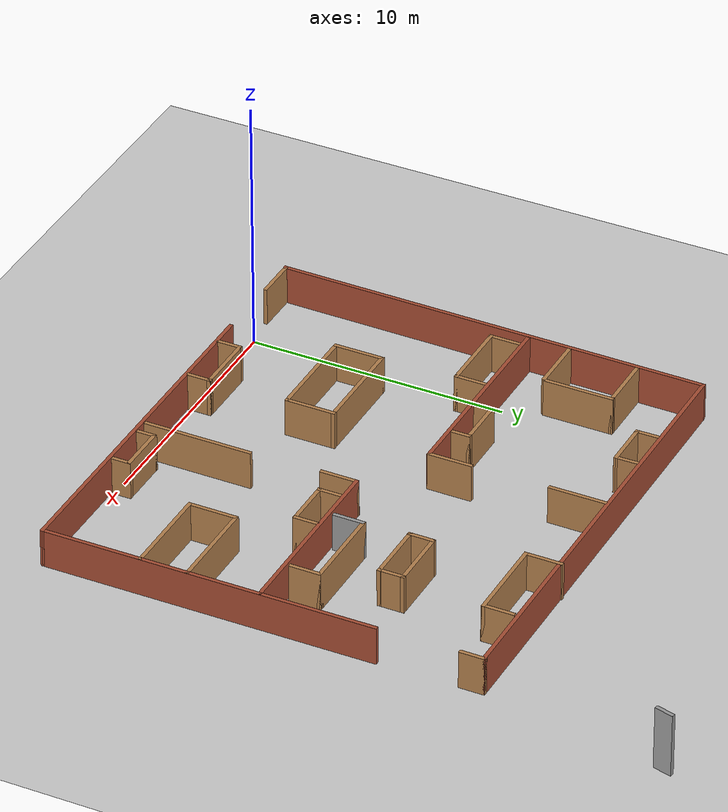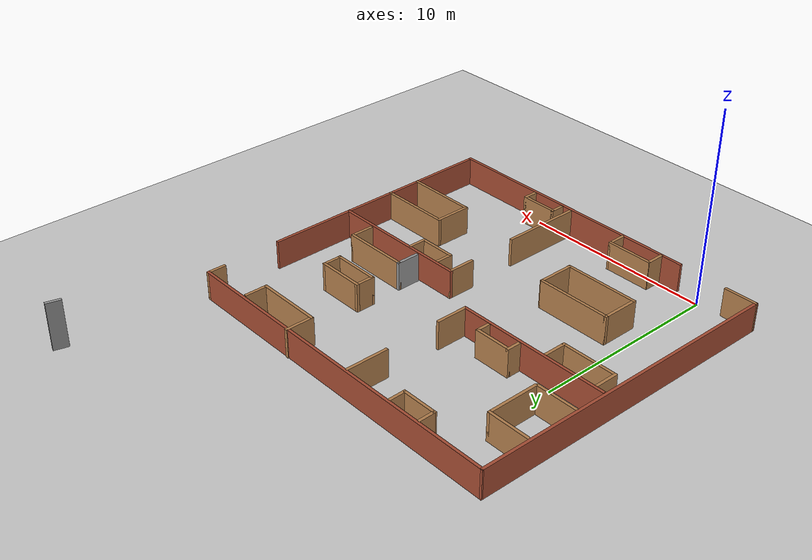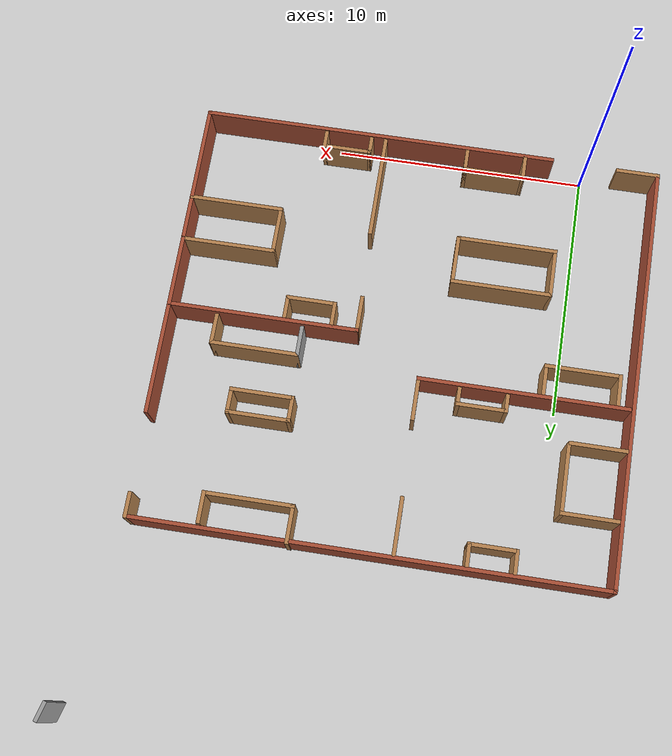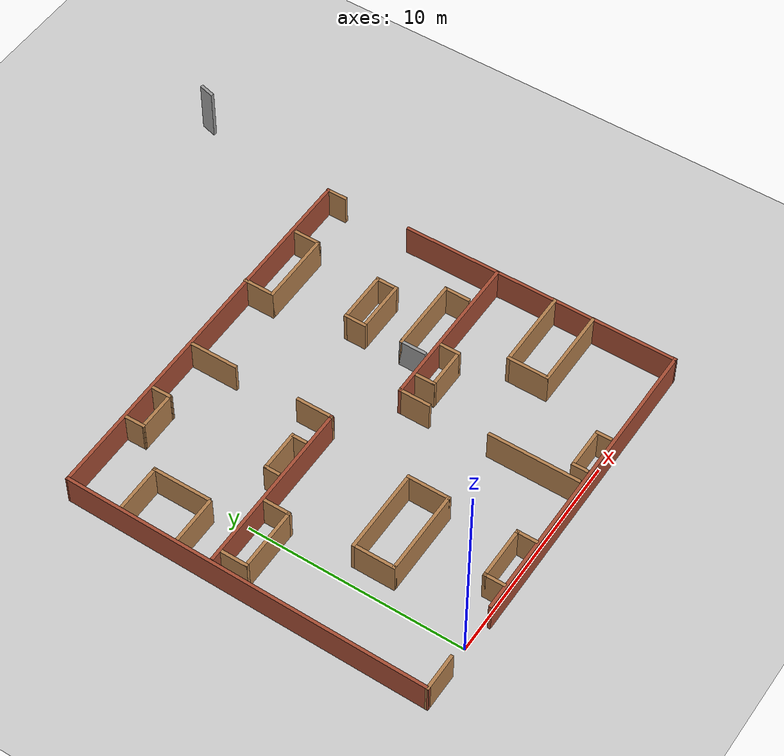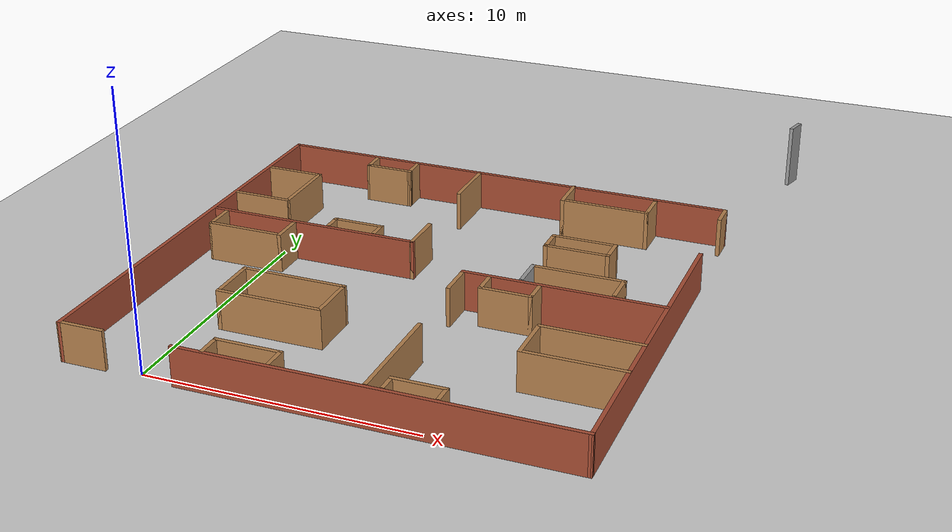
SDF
<sdf version="1.7">
 <world name="default">
  <light name="sun" type="directional">
   <pose>0 0 10 0 -0 0</pose>
   <diffuse>0.8 0.8 0.8 1</diffuse>
   <specular>0.2 0.2 0.2 1</specular>
   <attenuation>
    <range>1000</range>
    <constant>0.9</constant>
    <linear>0.01</linear>
    <quadratic>0.001</quadratic>
   </attenuation>
   <direction>-0.5 0.1 -0.9</direction>
   <spot><inner_angle>0</inner_angle><outer_angle>0</outer_angle><falloff>0</falloff></spot>
  </light>
  <model name="ground_plane">
   <static>1</static>
   <link name="link">
    <collision name="collision">
     <geometry><plane><normal>0 0 1</normal><size>100 100</size></plane></geometry>
     <surface>
      <contact><collide_bitmask>65535</collide_bitmask></contact>
      <friction><ode><mu>100</mu><mu2>50</mu2></ode></friction>
     </surface>
    </collision>
    <visual name="visual">
     <cast_shadows>0</cast_shadows>
     <geometry><plane><normal>0 0 1</normal><size>100 100</size></plane></geometry>
     <material>
      <script><uri>file://media/materials/scripts/gazebo.material</uri><name>Gazebo/Grey</name></script>
     </material>
    </visual>
   </link>
  </model>
  <gravity>0 0 -9.8</gravity>
  <magnetic_field>6e-06 2.3e-05 -4.2e-05</magnetic_field>
  <atmosphere type="adiabatic"/>
  <physics type="ode">
   <max_step_size>0.001</max_step_size>
   <real_time_factor>1</real_time_factor>
   <real_time_update_rate>1000</real_time_update_rate>
  </physics>
  <scene><ambient>0.4 0.4 0.4 1</ambient><background>0.7 0.7 0.7 1</background><shadows>1</shadows></scene>
  <spherical_coordinates>
   <surface_model>EARTH_WGS84</surface_model>
   <latitude_deg>0</latitude_deg>
   <longitude_deg>0</longitude_deg>
   <elevation>0</elevation>
   <heading_deg>0</heading_deg>
  </spherical_coordinates>
  <model name="Untitled">
   <pose>6.836 11.9489 0 0 -0 0</pose>
   <link name="Wall_100">
    <collision name="Wall_100_Collision">
     <geometry><box><size>3.5 0.15 1.5</size></box></geometry>
     <pose>0 0 0.75 0 -0 0</pose>
    </collision>
    <visual name="Wall_100_Visual">
     <pose>0 0 0.75 0 -0 0</pose>
     <geometry><box><size>3.5 0.15 1.5</size></box></geometry>
     <material>
      <script><uri>file://media/materials/scripts/gazebo.material</uri><name>Gazebo/Wood</name></script>
      <ambient>1 1 1 1</ambient>
     </material>
     <meta><layer>0</layer></meta>
    </visual>
    <pose>4.99402 -2.42898 0 0 -0 0</pose>
   </link>
   <link name="Wall_101">
    <collision name="Wall_101_Collision">
     <geometry><box><size>1.25 0.15 1.5</size></box></geometry>
     <pose>0 0 0.75 0 -0 0</pose>
    </collision>
    <visual name="Wall_101_Visual">
     <pose>0 0 0.75 0 -0 0</pose>
     <geometry><box><size>1.25 0.15 1.5</size></box></geometry>
     <material>
      <script><uri>file://media/materials/scripts/gazebo.material</uri><name>Gazebo/Wood</name></script>
      <ambient>1 1 1 1</ambient>
     </material>
     <meta><layer>0</layer></meta>
    </visual>
    <pose>6.66902 -2.97898 0 0 -0 -1.5708</pose>
   </link>
   <link name="Wall_103">
    <collision name="Wall_103_Collision">
     <geometry><box><size>1.0535 0.15 1.5</size></box></geometry>
     <pose>0 0 0.75 0 -0 0</pose>
    </collision>
    <visual name="Wall_103_Visual">
     <pose>0 0 0.75 0 -0 0</pose>
     <geometry><box><size>1.0535 0.15 1.5</size></box></geometry>
     <material>
      <script><uri>file://media/materials/scripts/gazebo.material</uri><name>Gazebo/Wood</name></script>
      <ambient>1 1 1 1</ambient>
     </material>
     <meta><layer>0</layer></meta>
    </visual>
    <pose>3.19102 -0.246478 0 0 -0 -1.5708</pose>
   </link>
   <link name="Wall_104">
    <collision name="Wall_104_Collision">
     <geometry><box><size>2.5 0.15 1.5</size></box></geometry>
     <pose>0 0 0.75 0 -0 0</pose>
    </collision>
    <visual name="Wall_104_Visual">
     <pose>0 0 0.75 0 -0 0</pose>
     <geometry><box><size>2.5 0.15 1.5</size></box></geometry>
     <material>
      <script><uri>file://media/materials/scripts/gazebo.material</uri><name>Gazebo/Wood</name></script>
      <ambient>1 1 1 1</ambient>
     </material>
     <meta><layer>0</layer></meta>
    </visual>
    <pose>4.36602 -0.697978 0 0 -0 0</pose>
   </link>
   <link name="Wall_105">
    <collision name="Wall_105_Collision">
     <geometry><box><size>1.0535 0.15 1.5</size></box></geometry>
     <pose>0 0 0.75 0 -0 0</pose>
    </collision>
    <visual name="Wall_105_Visual">
     <pose>0 0 0.75 0 -0 0</pose>
     <geometry><box><size>1.0535 0.15 1.5</size></box></geometry>
     <material>
      <script><uri>file://media/materials/scripts/gazebo.material</uri><name>Gazebo/Wood</name></script>
      <ambient>1 1 1 1</ambient>
     </material>
     <meta><layer>0</layer></meta>
    </visual>
    <pose>5.54102 -0.246478 0 0 -0 1.5708</pose>
   </link>
   <link name="Wall_106">
    <collision name="Wall_106_Collision">
     <geometry><box><size>2.5 0.15 1.5</size></box></geometry>
     <pose>0 0 0.75 0 -0 0</pose>
    </collision>
    <visual name="Wall_106_Visual">
     <pose>0 0 0.75 0 -0 0</pose>
     <geometry><box><size>2.5 0.15 1.5</size></box></geometry>
     <material>
      <script><uri>file://media/materials/scripts/gazebo.material</uri><name>Gazebo/Wood</name></script>
      <ambient>1 1 1 1</ambient>
     </material>
     <meta><layer>0</layer></meta>
    </visual>
    <pose>4.36602 0.205022 0 0 -0 3.14159</pose>
   </link>
   <link name="Wall_110">
    <collision name="Wall_110_Collision">
     <geometry><box><size>0.75 0.15 2.5</size></box></geometry>
     <pose>0 0 1.25 0 -0 0</pose>
    </collision>
    <visual name="Wall_110_Visual">
     <pose>0 0 1.25 0 -0 0</pose>
     <geometry><box><size>0.75 0.15 2.5</size></box></geometry>
     <material>
      <script><uri>file://media/materials/scripts/gazebo.material</uri><name>Gazebo/Grey</name></script>
      <ambient>1 1 1 1</ambient>
     </material>
     <meta><layer>0</layer></meta>
    </visual>
    <pose>9.65715 11.8769 0 0 -0 1.309</pose>
   </link>
   <link name="Wall_13">
    <collision name="Wall_13_Collision">
     <geometry><box><size>16.9704 0.15 1.5</size></box></geometry>
     <pose>0 0 0.75 0 -0 0</pose>
    </collision>
    <visual name="Wall_13_Visual">
     <pose>0 0 0.75 0 -0 0</pose>
     <geometry><box><size>16.9704 0.15 1.5</size></box></geometry>
     <material>
      <script><uri>file://media/materials/scripts/gazebo.material</uri><name>Gazebo/Bricks</name></script>
      <ambient>1 1 1 1</ambient>
     </material>
     <meta><layer>0</layer></meta>
    </visual>
    <pose>-9.67498 -3.71348 0 0 -0 -1.57983</pose>
   </link>
   <link name="Wall_14">
    <collision name="Wall_14_Collision">
     <geometry><box><size>1.75 0.15 1.5</size></box></geometry>
     <pose>0 0 0.75 0 -0 0</pose>
    </collision>
    <visual name="Wall_14_Visual">
     <pose>0 0 0.75 0 -0 0</pose>
     <geometry><box><size>1.75 0.15 1.5</size></box></geometry>
     <material>
      <script><uri>file://media/materials/scripts/gazebo.material</uri><name>Gazebo/Wood</name></script>
      <ambient>1 1 1 1</ambient>
     </material>
     <meta><layer>0</layer></meta>
    </visual>
    <pose>-8.95098 -12.123 0 0 -0 0</pose>
   </link>
   <link name="Wall_19">
    <collision name="Wall_19_Collision">
     <geometry><box><size>14.25 0.15 1.5</size></box></geometry>
     <pose>0 0 0.75 0 -0 0</pose>
    </collision>
    <visual name="Wall_19_Visual">
     <pose>0 0 0.75 0 -0 0</pose>
     <geometry><box><size>14.25 0.15 1.5</size></box></geometry>
     <material>
      <script><uri>file://media/materials/scripts/gazebo.material</uri><name>Gazebo/Bricks</name></script>
      <ambient>1 1 1 1</ambient>
     </material>
     <meta><layer>0</layer></meta>
    </visual>
    <pose>1.59402 -12.183 0 0 -0 0</pose>
   </link>
   <link name="Wall_20">
    <collision name="Wall_20_Collision">
     <geometry><box><size>12.9764 0.15 1.5</size></box></geometry>
     <pose>0 0 0.75 0 -0 0</pose>
    </collision>
    <visual name="Wall_20_Visual">
     <pose>0 0 0.75 0 -0 0</pose>
     <geometry><box><size>12.9764 0.15 1.5</size></box></geometry>
     <material>
      <script><uri>file://media/materials/scripts/gazebo.material</uri><name>Gazebo/Bricks</name></script>
      <ambient>1 1 1 1</ambient>
     </material>
     <meta><layer>0</layer></meta>
    </visual>
    <pose>8.61002 -5.76998 0 0 -0 1.5761</pose>
   </link>
   <link name="Wall_24">
    <collision name="Wall_24_Collision">
     <geometry><box><size>18.25 0.15 1.5</size></box></geometry>
     <pose>0 0 0.75 0 -0 0</pose>
    </collision>
    <visual name="Wall_24_Visual">
     <pose>0 0 0.75 0 -0 0</pose>
     <geometry><box><size>18.25 0.15 1.5</size></box></geometry>
     <material>
      <script><uri>file://media/materials/scripts/gazebo.material</uri><name>Gazebo/Bricks</name></script>
      <ambient>1 1 1 1</ambient>
     </material>
     <meta><layer>0</layer></meta>
    </visual>
    <pose>-0.548978 4.69602 0 0 -0 0</pose>
   </link>
   <link name="Wall_26">
    <collision name="Wall_26_Collision">
     <geometry><box><size>8.21227 0.15 1.5</size></box></geometry>
     <pose>0 0 0.75 0 -0 0</pose>
    </collision>
    <visual name="Wall_26_Visual">
     <pose>0 0 0.75 0 -0 0</pose>
     <geometry><box><size>8.21227 0.15 1.5</size></box></geometry>
     <material>
      <script><uri>file://media/materials/scripts/gazebo.material</uri><name>Gazebo/Bricks</name></script>
      <ambient>1 1 1 1</ambient>
     </material>
     <meta><layer>0</layer></meta>
    </visual>
    <pose>-5.46284 -2.20098 0 0 -0 0</pose>
   </link>
   <link name="Wall_30">
    <collision name="Wall_30_Collision">
     <geometry><box><size>1.75 0.15 1.5</size></box></geometry>
     <pose>0 0 0.75 0 -0 0</pose>
    </collision>
    <visual name="Wall_30_Visual">
     <pose>0 0 0.75 0 -0 0</pose>
     <geometry><box><size>1.75 0.15 1.5</size></box></geometry>
     <material>
      <script><uri>file://media/materials/scripts/gazebo.material</uri><name>Gazebo/Wood</name></script>
      <ambient>1 1 1 1</ambient>
     </material>
     <meta><layer>0</layer></meta>
    </visual>
    <pose>-1.43171 -1.40098 0 0 -0 1.5708</pose>
   </link>
   <link name="Wall_32">
    <collision name="Wall_32_Collision">
     <geometry><box><size>2.25 0.15 1.5</size></box></geometry>
     <pose>0 0 0.75 0 -0 0</pose>
    </collision>
    <visual name="Wall_32_Visual">
     <pose>0 0 0.75 0 -0 0</pose>
     <geometry><box><size>2.25 0.15 1.5</size></box></geometry>
     <material>
      <script><uri>file://media/materials/scripts/gazebo.material</uri><name>Gazebo/Wood</name></script>
      <ambient>1 1 1 1</ambient>
     </material>
     <meta><layer>0</layer></meta>
    </visual>
    <pose>-1.48798 3.53002 0 0 -0 -1.5708</pose>
   </link>
   <link name="Wall_34">
    <collision name="Wall_34_Collision">
     <geometry><box><size>7.5 0.15 1.5</size></box></geometry>
     <pose>0 0 0.75 0 -0 0</pose>
    </collision>
    <visual name="Wall_34_Visual">
     <pose>0 0 0.75 0 -0 0</pose>
     <geometry><box><size>7.5 0.15 1.5</size></box></geometry>
     <material>
      <script><uri>file://media/materials/scripts/gazebo.material</uri><name>Gazebo/Bricks</name></script>
      <ambient>1 1 1 1</ambient>
     </material>
     <meta><layer>0</layer></meta>
    </visual>
    <pose>4.88102 -3.75398 0 0 -0 0</pose>
   </link>
   <link name="Wall_37">
    <collision name="Wall_37_Collision">
     <geometry><box><size>1.5 0.15 1.5</size></box></geometry>
     <pose>0 0 0.75 0 -0 0</pose>
    </collision>
    <visual name="Wall_37_Visual">
     <pose>0 0 0.75 0 -0 0</pose>
     <geometry><box><size>1.5 0.15 1.5</size></box></geometry>
     <material>
      <script><uri>file://media/materials/scripts/gazebo.material</uri><name>Gazebo/Wood</name></script>
      <ambient>1 1 1 1</ambient>
     </material>
     <meta><layer>0</layer></meta>
    </visual>
    <pose>1.20602 -4.42898 0 0 -0 -1.5708</pose>
   </link>
   <link name="Wall_39">
    <collision name="Wall_39_Collision">
     <geometry><box><size>4.25 0.15 1.5</size></box></geometry>
     <pose>0 0 0.75 0 -0 0</pose>
    </collision>
    <visual name="Wall_39_Visual">
     <pose>0 0 0.75 0 -0 0</pose>
     <geometry><box><size>4.25 0.15 1.5</size></box></geometry>
     <material>
      <script><uri>file://media/materials/scripts/gazebo.material</uri><name>Gazebo/Wood</name></script>
      <ambient>1 1 1 1</ambient>
     </material>
     <meta><layer>0</layer></meta>
    </visual>
    <pose>1.32502 -9.95898 0 0 -0 -1.5708</pose>
   </link>
   <link name="Wall_43">
    <collision name="Wall_43_Collision">
     <geometry><box><size>1 0.15 1.5</size></box></geometry>
     <pose>0 0 0.75 0 -0 0</pose>
    </collision>
    <visual name="Wall_43_Visual">
     <pose>0 0 0.75 0 -0 0</pose>
     <geometry><box><size>1 0.15 1.5</size></box></geometry>
     <material>
      <script><uri>file://media/materials/scripts/gazebo.material</uri><name>Gazebo/Wood</name></script>
      <ambient>1 1 1 1</ambient>
     </material>
     <meta><layer>0</layer></meta>
    </visual>
    <pose>8.50102 4.27102 0 0 -0 -1.5708</pose>
   </link>
   <link name="Wall_45">
    <collision name="Wall_45_Collision">
     <geometry><box><size>1 0.15 1.5</size></box></geometry>
     <pose>0 0 0.75 0 -0 0</pose>
    </collision>
    <visual name="Wall_45_Visual">
     <pose>0 0 0.75 0 -0 0</pose>
     <geometry><box><size>1 0.15 1.5</size></box></geometry>
     <material>
      <script><uri>file://media/materials/scripts/gazebo.material</uri><name>Gazebo/Wood</name></script>
      <ambient>1 1 1 1</ambient>
     </material>
     <meta><layer>0</layer></meta>
    </visual>
    <pose>2.21902 -4.27298 0 0 -0 -1.5708</pose>
   </link>
   <link name="Wall_46">
    <collision name="Wall_46_Collision">
     <geometry><box><size>2 0.15 1.5</size></box></geometry>
     <pose>0 0 0.75 0 -0 0</pose>
    </collision>
    <visual name="Wall_46_Visual">
     <pose>0 0 0.75 0 -0 0</pose>
     <geometry><box><size>2 0.15 1.5</size></box></geometry>
     <material>
      <script><uri>file://media/materials/scripts/gazebo.material</uri><name>Gazebo/Wood</name></script>
      <ambient>1 1 1 1</ambient>
     </material>
     <meta><layer>0</layer></meta>
    </visual>
    <pose>3.14402 -4.69798 0 0 -0 0</pose>
   </link>
   <link name="Wall_47">
    <collision name="Wall_47_Collision">
     <geometry><box><size>1 0.15 1.5</size></box></geometry>
     <pose>0 0 0.75 0 -0 0</pose>
    </collision>
    <visual name="Wall_47_Visual">
     <pose>0 0 0.75 0 -0 0</pose>
     <geometry><box><size>1 0.15 1.5</size></box></geometry>
     <material>
      <script><uri>file://media/materials/scripts/gazebo.material</uri><name>Gazebo/Wood</name></script>
      <ambient>1 1 1 1</ambient>
     </material>
     <meta><layer>0</layer></meta>
    </visual>
    <pose>4.06902 -4.27298 0 0 -0 1.5708</pose>
   </link>
   <link name="Wall_51">
    <collision name="Wall_51_Collision">
     <geometry><box><size>3.75 0.15 1.5</size></box></geometry>
     <pose>0 0 0.75 0 -0 0</pose>
    </collision>
    <visual name="Wall_51_Visual">
     <pose>0 0 0.75 0 -0 0</pose>
     <geometry><box><size>3.75 0.15 1.5</size></box></geometry>
     <material>
      <script><uri>file://media/materials/scripts/gazebo.material</uri><name>Gazebo/Wood</name></script>
      <ambient>1 1 1 1</ambient>
     </material>
     <meta><layer>0</layer></meta>
    </visual>
    <pose>6.80302 -6.53198 0 0 -0 0</pose>
   </link>
   <link name="Wall_53">
    <collision name="Wall_53_Collision">
     <geometry><box><size>1.96941 0.15 1.5</size></box></geometry>
     <pose>0 0 0.75 0 -0 0</pose>
    </collision>
    <visual name="Wall_53_Visual">
     <pose>0 0 0.75 0 -0 0</pose>
     <geometry><box><size>1.96941 0.15 1.5</size></box></geometry>
     <material>
      <script><uri>file://media/materials/scripts/gazebo.material</uri><name>Gazebo/Wood</name></script>
      <ambient>1 1 1 1</ambient>
     </material>
     <meta><layer>0</layer></meta>
    </visual>
    <pose>5.00302 -7.44198 0 0 -0 -1.5708</pose>
   </link>
   <link name="Wall_54">
    <collision name="Wall_54_Collision">
     <geometry><box><size>3.75 0.15 1.5</size></box></geometry>
     <pose>0 0 0.75 0 -0 0</pose>
    </collision>
    <visual name="Wall_54_Visual">
     <pose>0 0 0.75 0 -0 0</pose>
     <geometry><box><size>3.75 0.15 1.5</size></box></geometry>
     <material>
      <script><uri>file://media/materials/scripts/gazebo.material</uri><name>Gazebo/Wood</name></script>
      <ambient>1 1 1 1</ambient>
     </material>
     <meta><layer>0</layer></meta>
    </visual>
    <pose>6.80302 -8.35198 0 0 -0 0</pose>
   </link>
   <link name="Wall_56">
    <collision name="Wall_56_Collision">
     <geometry><box><size>0.75 0.15 1.5</size></box></geometry>
     <pose>0 0 0.75 0 -0 0</pose>
    </collision>
    <visual name="Wall_56_Visual">
     <pose>0 0 0.75 0 -0 0</pose>
     <geometry><box><size>0.75 0.15 1.5</size></box></geometry>
     <material>
      <script><uri>file://media/materials/scripts/gazebo.material</uri><name>Gazebo/Wood</name></script>
      <ambient>1 1 1 1</ambient>
     </material>
     <meta><layer>0</layer></meta>
    </visual>
    <pose>1.90202 -11.707 0 0 -0 1.5708</pose>
   </link>
   <link name="Wall_57">
    <collision name="Wall_57_Collision">
     <geometry><box><size>2 0.15 1.5</size></box></geometry>
     <pose>0 0 0.75 0 -0 0</pose>
    </collision>
    <visual name="Wall_57_Visual">
     <pose>0 0 0.75 0 -0 0</pose>
     <geometry><box><size>2 0.15 1.5</size></box></geometry>
     <material>
      <script><uri>file://media/materials/scripts/gazebo.material</uri><name>Gazebo/Wood</name></script>
      <ambient>1 1 1 1</ambient>
     </material>
     <meta><layer>0</layer></meta>
    </visual>
    <pose>2.82702 -11.407 0 0 -0 0</pose>
   </link>
   <link name="Wall_58">
    <collision name="Wall_58_Collision">
     <geometry><box><size>0.75 0.15 1.5</size></box></geometry>
     <pose>0 0 0.75 0 -0 0</pose>
    </collision>
    <visual name="Wall_58_Visual">
     <pose>0 0 0.75 0 -0 0</pose>
     <geometry><box><size>0.75 0.15 1.5</size></box></geometry>
     <material>
      <script><uri>file://media/materials/scripts/gazebo.material</uri><name>Gazebo/Wood</name></script>
      <ambient>1 1 1 1</ambient>
     </material>
     <meta><layer>0</layer></meta>
    </visual>
    <pose>3.75202 -11.707 0 0 -0 -1.5708</pose>
   </link>
   <link name="Wall_64">
    <collision name="Wall_64_Collision">
     <geometry><box><size>1.25 0.15 1.5</size></box></geometry>
     <pose>0 0 0.75 0 -0 0</pose>
    </collision>
    <visual name="Wall_64_Visual">
     <pose>0 0 0.75 0 -0 0</pose>
     <geometry><box><size>1.25 0.15 1.5</size></box></geometry>
     <material>
      <script><uri>file://media/materials/scripts/gazebo.material</uri><name>Gazebo/Wood</name></script>
      <ambient>1 1 1 1</ambient>
     </material>
     <meta><layer>0</layer></meta>
    </visual>
    <pose>-9.04798 -2.89898 0 0 -0 -1.5708</pose>
   </link>
   <link name="Wall_65">
    <collision name="Wall_65_Collision">
     <geometry><box><size>3 0.15 1.5</size></box></geometry>
     <pose>0 0 0.75 0 -0 0</pose>
    </collision>
    <visual name="Wall_65_Visual">
     <pose>0 0 0.75 0 -0 0</pose>
     <geometry><box><size>3 0.15 1.5</size></box></geometry>
     <material>
      <script><uri>file://media/materials/scripts/gazebo.material</uri><name>Gazebo/Wood</name></script>
      <ambient>1 1 1 1</ambient>
     </material>
     <meta><layer>0</layer></meta>
    </visual>
    <pose>-7.62298 -3.44898 0 0 -0 0</pose>
   </link>
   <link name="Wall_66">
    <collision name="Wall_66_Collision">
     <geometry><box><size>1.25 0.15 1.5</size></box></geometry>
     <pose>0 0 0.75 0 -0 0</pose>
    </collision>
    <visual name="Wall_66_Visual">
     <pose>0 0 0.75 0 -0 0</pose>
     <geometry><box><size>1.25 0.15 1.5</size></box></geometry>
     <material>
      <script><uri>file://media/materials/scripts/gazebo.material</uri><name>Gazebo/Wood</name></script>
      <ambient>1 1 1 1</ambient>
     </material>
     <meta><layer>0</layer></meta>
    </visual>
    <pose>-6.19798 -2.89898 0 0 -0 1.5708</pose>
   </link>
   <link name="Wall_68">
    <collision name="Wall_68_Collision">
     <geometry><box><size>2 0.15 1.5</size></box></geometry>
     <pose>0 0 0.75 0 -0 0</pose>
    </collision>
    <visual name="Wall_68_Visual">
     <pose>0 0 0.75 0 -0 0</pose>
     <geometry><box><size>2 0.15 1.5</size></box></geometry>
     <material>
      <script><uri>file://media/materials/scripts/gazebo.material</uri><name>Gazebo/Wood</name></script>
      <ambient>1 1 1 1</ambient>
     </material>
     <meta><layer>0</layer></meta>
    </visual>
    <pose>-6.02398 -7.27498 0 0 -0 -1.5708</pose>
   </link>
   <link name="Wall_69">
    <collision name="Wall_69_Collision">
     <geometry><box><size>4 0.15 1.5</size></box></geometry>
     <pose>0 0 0.75 0 -0 0</pose>
    </collision>
    <visual name="Wall_69_Visual">
     <pose>0 0 0.75 0 -0 0</pose>
     <geometry><box><size>4 0.15 1.5</size></box></geometry>
     <material>
      <script><uri>file://media/materials/scripts/gazebo.material</uri><name>Gazebo/Wood</name></script>
      <ambient>1 1 1 1</ambient>
     </material>
     <meta><layer>0</layer></meta>
    </visual>
    <pose>-4.09898 -8.19998 0 0 -0 0</pose>
   </link>
   <link name="Wall_70">
    <collision name="Wall_70_Collision">
     <geometry><box><size>2 0.15 1.5</size></box></geometry>
     <pose>0 0 0.75 0 -0 0</pose>
    </collision>
    <visual name="Wall_70_Visual">
     <pose>0 0 0.75 0 -0 0</pose>
     <geometry><box><size>2 0.15 1.5</size></box></geometry>
     <material>
      <script><uri>file://media/materials/scripts/gazebo.material</uri><name>Gazebo/Wood</name></script>
      <ambient>1 1 1 1</ambient>
     </material>
     <meta><layer>0</layer></meta>
    </visual>
    <pose>-2.17398 -7.27498 0 0 -0 1.5708</pose>
   </link>
   <link name="Wall_72">
    <collision name="Wall_72_Collision">
     <geometry><box><size>4 0.15 1.5</size></box></geometry>
     <pose>0 0 0.75 0 -0 0</pose>
    </collision>
    <visual name="Wall_72_Visual">
     <pose>0 0 0.75 0 -0 0</pose>
     <geometry><box><size>4 0.15 1.5</size></box></geometry>
     <material>
      <script><uri>file://media/materials/scripts/gazebo.material</uri><name>Gazebo/Wood</name></script>
      <ambient>1 1 1 1</ambient>
     </material>
     <meta><layer>0</layer></meta>
    </visual>
    <pose>-4.09898 -6.34998 0 0 -0 0</pose>
   </link>
   <link name="Wall_74">
    <collision name="Wall_74_Collision">
     <geometry><box><size>1 0.15 1.5</size></box></geometry>
     <pose>0 0 0.75 0 -0 0</pose>
    </collision>
    <visual name="Wall_74_Visual">
     <pose>0 0 0.75 0 -0 0</pose>
     <geometry><box><size>1 0.15 1.5</size></box></geometry>
     <material>
      <script><uri>file://media/materials/scripts/gazebo.material</uri><name>Gazebo/Wood</name></script>
      <ambient>1 1 1 1</ambient>
     </material>
     <meta><layer>0</layer></meta>
    </visual>
    <pose>-4.38198 -11.673 0 0 -0 1.5708</pose>
   </link>
   <link name="Wall_75">
    <collision name="Wall_75_Collision">
     <geometry><box><size>2.5 0.15 1.5</size></box></geometry>
     <pose>0 0 0.75 0 -0 0</pose>
    </collision>
    <visual name="Wall_75_Visual">
     <pose>0 0 0.75 0 -0 0</pose>
     <geometry><box><size>2.5 0.15 1.5</size></box></geometry>
     <material>
      <script><uri>file://media/materials/scripts/gazebo.material</uri><name>Gazebo/Wood</name></script>
      <ambient>1 1 1 1</ambient>
     </material>
     <meta><layer>0</layer></meta>
    </visual>
    <pose>-3.20698 -11.248 0 0 -0 0</pose>
   </link>
   <link name="Wall_76">
    <collision name="Wall_76_Collision">
     <geometry><box><size>1 0.15 1.5</size></box></geometry>
     <pose>0 0 0.75 0 -0 0</pose>
    </collision>
    <visual name="Wall_76_Visual">
     <pose>0 0 0.75 0 -0 0</pose>
     <geometry><box><size>1 0.15 1.5</size></box></geometry>
     <material>
      <script><uri>file://media/materials/scripts/gazebo.material</uri><name>Gazebo/Wood</name></script>
      <ambient>1 1 1 1</ambient>
     </material>
     <meta><layer>0</layer></meta>
    </visual>
    <pose>-2.03198 -11.673 0 0 -0 -1.5708</pose>
   </link>
   <link name="Wall_78">
    <collision name="Wall_78_Collision">
     <geometry><box><size>2.25 0.15 1.5</size></box></geometry>
     <pose>0 0 0.75 0 -0 0</pose>
    </collision>
    <visual name="Wall_78_Visual">
     <pose>0 0 0.75 0 -0 0</pose>
     <geometry><box><size>2.25 0.15 1.5</size></box></geometry>
     <material>
      <script><uri>file://media/materials/scripts/gazebo.material</uri><name>Gazebo/Wood</name></script>
      <ambient>1 1 1 1</ambient>
     </material>
     <meta><layer>0</layer></meta>
    </visual>
    <pose>-8.42098 2.13302 0 0 -0 0</pose>
   </link>
   <link name="Wall_79">
    <collision name="Wall_79_Collision">
     <geometry><box><size>2.75 0.15 1.5</size></box></geometry>
     <pose>0 0 0.75 0 -0 0</pose>
    </collision>
    <visual name="Wall_79_Visual">
     <pose>0 0 0.75 0 -0 0</pose>
     <geometry><box><size>2.75 0.15 1.5</size></box></geometry>
     <material>
      <script><uri>file://media/materials/scripts/gazebo.material</uri><name>Gazebo/Wood</name></script>
      <ambient>1 1 1 1</ambient>
     </material>
     <meta><layer>0</layer></meta>
    </visual>
    <pose>-7.37098 0.833022 0 0 -0 -1.5708</pose>
   </link>
   <link name="Wall_83">
    <collision name="Wall_83_Collision">
     <geometry><box><size>2.25 0.15 1.5</size></box></geometry>
     <pose>0 0 0.75 0 -0 0</pose>
    </collision>
    <visual name="Wall_83_Visual">
     <pose>0 0 0.75 0 -0 0</pose>
     <geometry><box><size>2.25 0.15 1.5</size></box></geometry>
     <material>
      <script><uri>file://media/materials/scripts/gazebo.material</uri><name>Gazebo/Wood</name></script>
      <ambient>1 1 1 1</ambient>
     </material>
     <meta><layer>0</layer></meta>
    </visual>
    <pose>-8.48298 -0.557978 0 0 -0 0</pose>
   </link>
   <link name="Wall_85">
    <collision name="Wall_85_Collision">
     <geometry><box><size>0.937838 0.15 1.5</size></box></geometry>
     <pose>0 0 0.75 0 -0 0</pose>
    </collision>
    <visual name="Wall_85_Visual">
     <pose>0 0 0.75 0 -0 0</pose>
     <geometry><box><size>0.937838 0.15 1.5</size></box></geometry>
     <material>
      <script><uri>file://media/materials/scripts/gazebo.material</uri><name>Gazebo/Wood</name></script>
      <ambient>1 1 1 1</ambient>
     </material>
     <meta><layer>0</layer></meta>
    </visual>
    <pose>-5.93279 4.17015 0 0 -0 -1.55509</pose>
   </link>
   <link name="Wall_86">
    <collision name="Wall_86_Collision">
     <geometry><box><size>1.918 0.15 1.5</size></box></geometry>
     <pose>0 0 0.75 0 -0 0</pose>
    </collision>
    <visual name="Wall_86_Visual">
     <pose>0 0 0.75 0 -0 0</pose>
     <geometry><box><size>1.918 0.15 1.5</size></box></geometry>
     <material>
      <script><uri>file://media/materials/scripts/gazebo.material</uri><name>Gazebo/Wood</name></script>
      <ambient>1 1 1 1</ambient>
     </material>
     <meta><layer>0</layer></meta>
    </visual>
    <pose>-5.04261 3.77678 0 0 -0 0.000566</pose>
   </link>
   <link name="Wall_87">
    <collision name="Wall_87_Collision">
     <geometry><box><size>0.936838 0.15 1.5</size></box></geometry>
     <pose>0 0 0.75 0 -0 0</pose>
    </collision>
    <visual name="Wall_87_Visual">
     <pose>0 0 0.75 0 -0 0</pose>
     <geometry><box><size>0.936838 0.15 1.5</size></box></geometry>
     <material>
      <script><uri>file://media/materials/scripts/gazebo.material</uri><name>Gazebo/Wood</name></script>
      <ambient>1 1 1 1</ambient>
     </material>
     <meta><layer>0</layer></meta>
    </visual>
    <pose>-4.16479 4.17065 0 0 -0 1.58652</pose>
   </link>
   <link name="Wall_89">
    <collision name="Wall_89_Collision">
     <geometry><box><size>0.75 0.15 1.5</size></box></geometry>
     <pose>0 0 0.75 0 -0 0</pose>
    </collision>
    <visual name="Wall_89_Visual">
     <pose>0 0 0.75 0 -0 0</pose>
     <geometry><box><size>0.75 0.15 1.5</size></box></geometry>
     <material>
      <script><uri>file://media/materials/scripts/gazebo.material</uri><name>Gazebo/Wood</name></script>
      <ambient>1 1 1 1</ambient>
     </material>
     <meta><layer>0</layer></meta>
    </visual>
    <pose>-4.88098 -1.72698 0 0 -0 1.5708</pose>
   </link>
   <link name="Wall_90">
    <collision name="Wall_90_Collision">
     <geometry><box><size>2 0.15 1.5</size></box></geometry>
     <pose>0 0 0.75 0 -0 0</pose>
    </collision>
    <visual name="Wall_90_Visual">
     <pose>0 0 0.75 0 -0 0</pose>
     <geometry><box><size>2 0.15 1.5</size></box></geometry>
     <material>
      <script><uri>file://media/materials/scripts/gazebo.material</uri><name>Gazebo/Wood</name></script>
      <ambient>1 1 1 1</ambient>
     </material>
     <meta><layer>0</layer></meta>
    </visual>
    <pose>-3.95598 -1.42698 0 0 -0 0</pose>
   </link>
   <link name="Wall_93">
    <collision name="Wall_93_Collision">
     <geometry><box><size>0.75 0.15 1.5</size></box></geometry>
     <pose>0 0 0.75 0 -0 0</pose>
    </collision>
    <visual name="Wall_93_Visual">
     <pose>0 0 0.75 0 -0 0</pose>
     <geometry><box><size>0.75 0.15 1.5</size></box></geometry>
     <material>
      <script><uri>file://media/materials/scripts/gazebo.material</uri><name>Gazebo/Wood</name></script>
      <ambient>1 1 1 1</ambient>
     </material>
     <meta><layer>0</layer></meta>
    </visual>
    <pose>-3.03098 -1.72698 0 0 -0 -1.5708</pose>
   </link>
   <link name="Wall_95">
    <collision name="Wall_95_Collision">
     <geometry><box><size>1.5 0.15 1.5</size></box></geometry>
     <pose>0 0 0.75 0 -0 0</pose>
    </collision>
    <visual name="Wall_95_Visual">
     <pose>0 0 0.75 0 -0 0</pose>
     <geometry><box><size>1.5 0.15 1.5</size></box></geometry>
     <material>
      <script><uri>file://media/materials/scripts/gazebo.material</uri><name>Gazebo/Wood</name></script>
      <ambient>1 1 1 1</ambient>
     </material>
     <meta><layer>0</layer></meta>
    </visual>
    <pose>2.45202 4.06502 0 0 -0 -1.5708</pose>
   </link>
   <link name="Wall_96">
    <collision name="Wall_96_Collision">
     <geometry><box><size>3.5 0.15 1.5</size></box></geometry>
     <pose>0 0 0.75 0 -0 0</pose>
    </collision>
    <visual name="Wall_96_Visual">
     <pose>0 0 0.75 0 -0 0</pose>
     <geometry><box><size>3.5 0.15 1.5</size></box></geometry>
     <material>
      <script><uri>file://media/materials/scripts/gazebo.material</uri><name>Gazebo/Wood</name></script>
      <ambient>1 1 1 1</ambient>
     </material>
     <meta><layer>0</layer></meta>
    </visual>
    <pose>4.12702 3.39002 0 0 -0 0</pose>
   </link>
   <link name="Wall_97">
    <collision name="Wall_97_Collision">
     <geometry><box><size>1.25 0.15 1.5</size></box></geometry>
     <pose>0 0 0.75 0 -0 0</pose>
    </collision>
    <visual name="Wall_97_Visual">
     <pose>0 0 0.75 0 -0 0</pose>
     <geometry><box><size>1.25 0.15 1.5</size></box></geometry>
     <material>
      <script><uri>file://media/materials/scripts/gazebo.material</uri><name>Gazebo/Wood</name></script>
      <ambient>1 1 1 1</ambient>
     </material>
     <meta><layer>0</layer></meta>
    </visual>
    <pose>5.80202 3.94002 0 0 -0 1.5708</pose>
   </link>
   <link name="Wall_99">
    <collision name="Wall_99_Collision">
     <geometry><box><size>1.25 0.15 1.5</size></box></geometry>
     <pose>0 0 0.75 0 -0 0</pose>
    </collision>
    <visual name="Wall_99_Visual">
     <pose>0 0 0.75 0 -0 0</pose>
     <geometry><box><size>1.25 0.15 1.5</size></box></geometry>
     <material>
      <script><uri>file://media/materials/scripts/gazebo.material</uri><name>Gazebo/Grey</name></script>
      <ambient>1 1 1 1</ambient>
     </material>
     <meta><layer>0</layer></meta>
    </visual>
    <pose>3.31902 -2.97898 0 0 -0 1.5708</pose>
   </link>
   <static>1</static>
  </model>
 </world>
</sdf>
